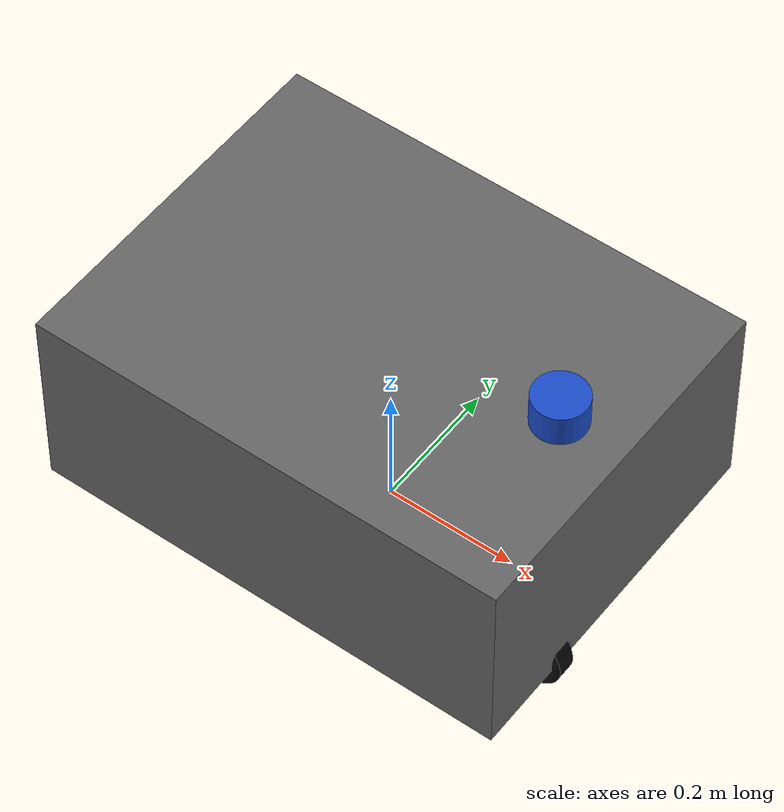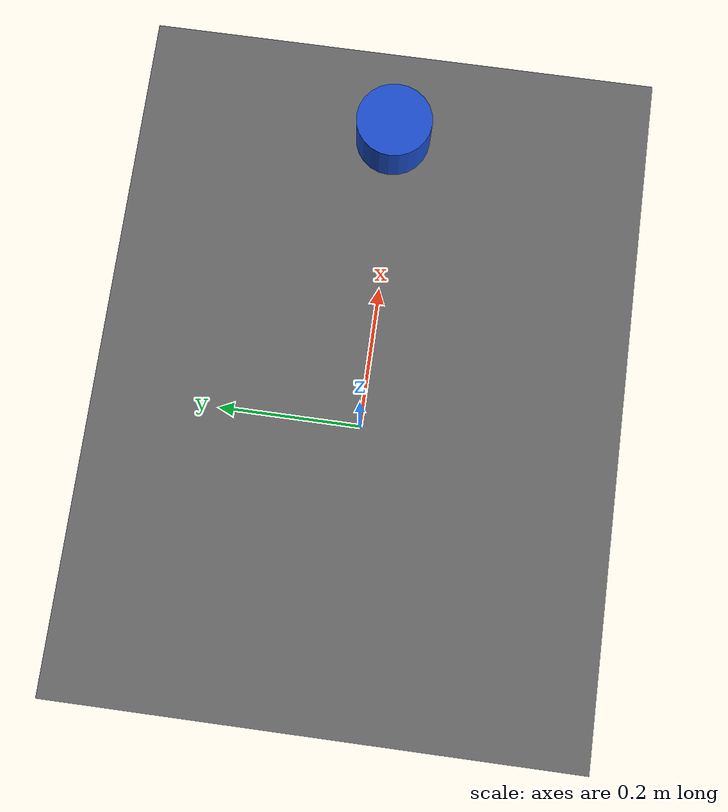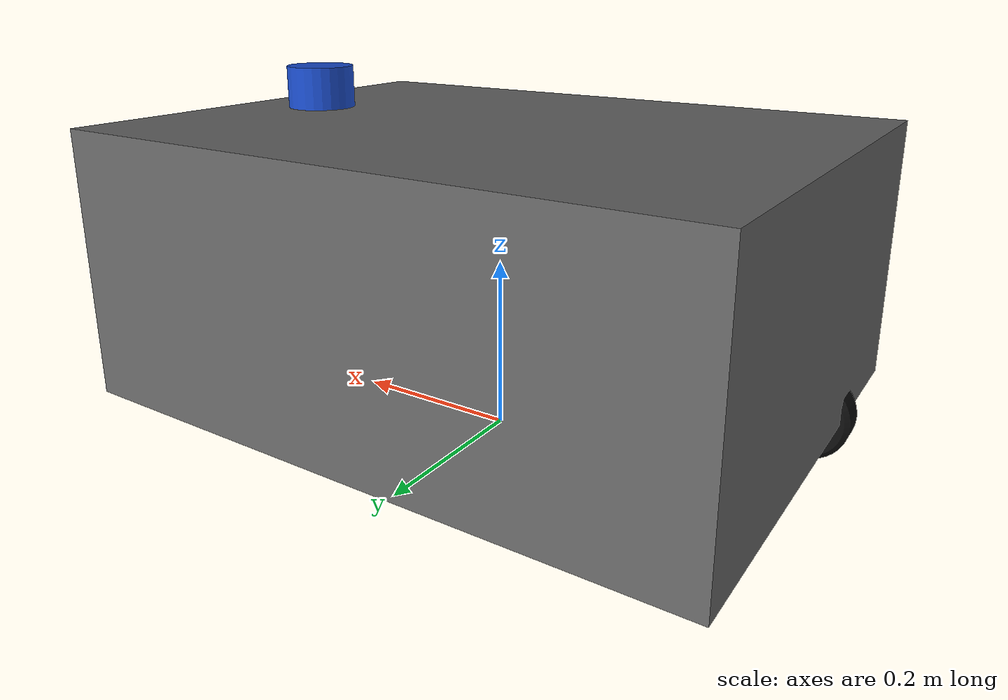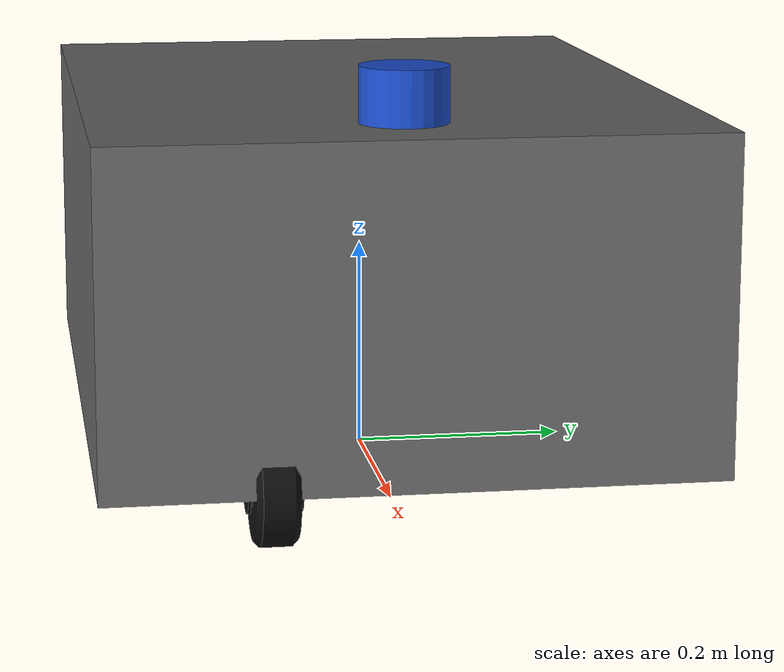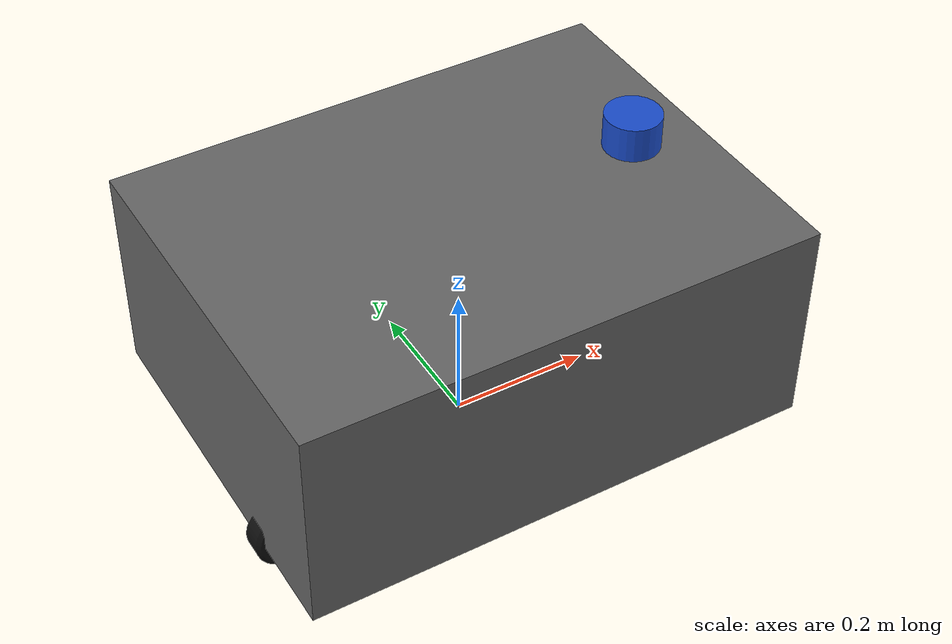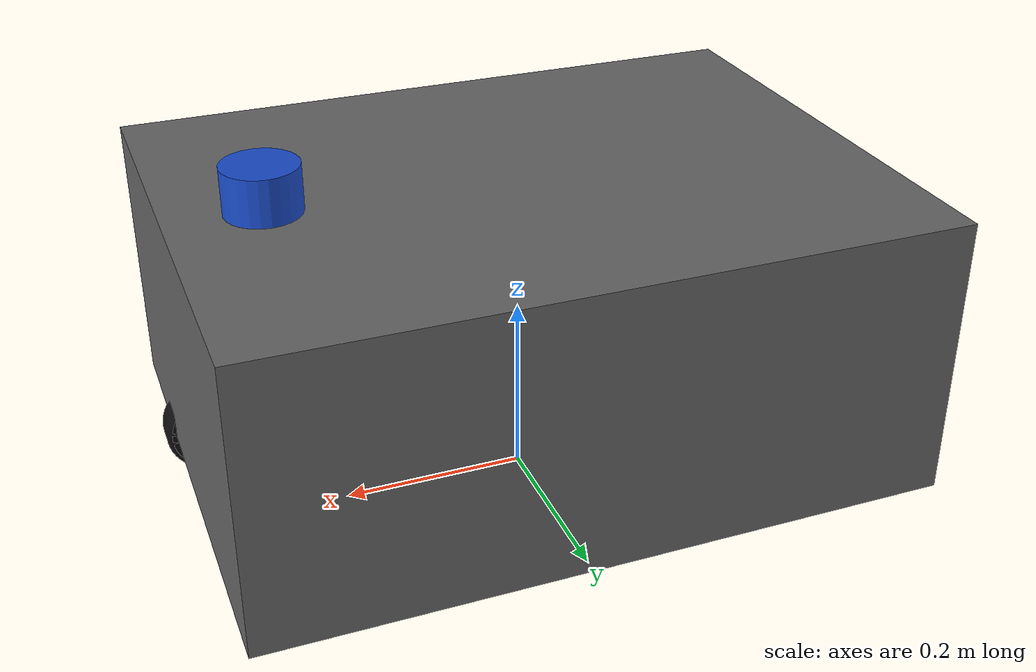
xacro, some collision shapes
<?xml version="1.0"?>
<robot xmlns:xacro="http://www.ros.org/wiki/xacro" name="amr_robot">

  <!-- true = chay Gazebo ; false = hardware that -->
  <xacro:arg name="use_sim" default="true"/>
  <xacro:arg name="use_ros2_control" default="true"/>

  <!-- ===== Include cac phan ===== -->
  <xacro:include filename="$(find robot_description)/urdf/common_properties.xacro"/>
  <xacro:include filename="$(find robot_description)/urdf/materials.xacro"/>
  <xacro:include filename="$(find robot_description)/urdf/wheels.xacro"/>
  <xacro:include filename="$(find robot_description)/urdf/sensors.xacro"/>
  <xacro:include filename="$(find robot_description)/urdf/ros2_control.xacro"/>

  <!-- ===== base_footprint (cho Nav2/odom) ===== -->
  <link name="base_footprint"/>

  <joint name="base_joint" type="fixed">
    <parent link="base_footprint"/>
    <child  link="base_link"/>
    <origin xyz="0 0 ${base_z}" rpy="0 0 0"/>
  </joint>

  <!-- ===== base_link (than xe) ===== -->
  <link name="base_link">
    <!-- Mesh goc tu CAD; scale mm -> m va doi truc CAD -> ROS. -->
    <visual>
      <origin xyz="-1.674842 -0.764810 -1.092814" rpy="${cad_to_ros_rpy}"/>
      <geometry>
        <mesh filename="package://robot_description/meshes/chassis.stl"
              scale="${mesh_scale} ${mesh_scale} ${mesh_scale}"/>
      </geometry>
      <material name="grey"/>
    </visual>

    <!-- Collision = box don gian (khong dung mesh) de Gazebo/ODE dung va cham
         NHANH. Mesh chi tiet lam physics cham vai phut trong VM. -->
    <collision>
      <origin xyz="0 0 0" rpy="0 0 0"/>
      <geometry>
        <box size="${base_length} ${base_width} ${base_height}"/>
      </geometry>
    </collision>

    <xacro:box_inertia m="${base_mass}" x="${base_length}" y="${base_width}" z="${base_height}"/>
  </link>

  <gazebo reference="base_link">
    <material>Gazebo/Grey</material>
  </gazebo>

  <!-- ===== Banh chinh ===== -->
  <xacro:drive_wheel prefix="left"  reflect="1"
                     mesh_file="left_drive_wheel.stl"
                     mesh_x="-1.674844" mesh_y="-0.981060" mesh_z="-0.985314"/>
  <xacro:drive_wheel prefix="right" reflect="-1"
                     mesh_file="right_drive_wheel.stl"
                     mesh_x="-1.674844" mesh_y="-0.548560" mesh_z="-0.985314"/>

  <!-- ===== 4 banh phu o 4 goc ===== -->
  <xacro:caster_wheel prefix="front_left" xpos="${caster_front_x}" ypos="${caster_left_y}"
                       mesh_file="front_left_caster.stl"
                       mesh_x="-1.964838" mesh_y="-0.917062" mesh_z="-0.974809"/>
  <xacro:caster_wheel prefix="front_right" xpos="${caster_front_x}" ypos="${caster_right_y}"
                       mesh_file="front_right_caster.stl"
                       mesh_x="-1.964857" mesh_y="-0.642145" mesh_z="-0.974809"/>
  <xacro:caster_wheel prefix="rear_left" xpos="${caster_rear_x}" ypos="${caster_left_y}"
                       mesh_file="rear_left_caster.stl"
                       mesh_x="-1.384831" mesh_y="-0.917062" mesh_z="-0.974809"/>
  <xacro:caster_wheel prefix="rear_right" xpos="${caster_rear_x}" ypos="${caster_right_y}"
                       mesh_file="rear_right_caster.stl"
                       mesh_x="-1.384831" mesh_y="-0.642062" mesh_z="-0.974809"/>

  <!-- ===== ros2_control ===== -->
  <xacro:if value="$(arg use_ros2_control)">
    <xacro:robot_ros2_control use_sim="$(arg use_sim)"/>
  </xacro:if>

</robot>

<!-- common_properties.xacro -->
<robot xmlns:xacro="http://www.ros.org/wiki/xacro">

  <!-- ===== THAN XE (base / chassis) ===== -->
  <!-- Do tu chassis.stl: Dai 0.730 x Rong 0.550 x Cao 0.305 (m). -->
  <xacro:property name="base_length" value="0.73"/>   <!-- truc X (toi/lui) -->
  <xacro:property name="base_width"  value="0.55"/>   <!-- truc Y (trai/phai) -->
  <xacro:property name="base_height" value="0.305"/>  <!-- truc Z (cao) -->
  <xacro:property name="base_mass"   value="40.0"/>   <!-- UOC LUONG: doi theo can that -->

  <!-- ===== CAD mesh transform ===== -->
  <!-- STL dung mm va truc CAD: X=trai/phai, Y=cao, Z=truoc/sau.
       ROS: X=truoc, Y=trai, Z=cao. -->
  <xacro:property name="mesh_scale" value="0.001"/>
  <xacro:property name="cad_to_ros_rpy" value="1.57079632679 0 1.57079632679"/>

  <!-- ===== BANH CHINH (driven wheels) ===== -->
  <!-- Do tu drive-wheel STL: duong kinh xap xi 0.1945m, day 0.050m. -->
  <xacro:property name="wheel_radius" value="0.09725"/>
  <xacro:property name="wheel_width"  value="0.05"/>
  <xacro:property name="wheel_mass"   value="2.0"/>

  <!-- Khoang cach tam-tam do truc CAD: 981.06 - 548.56 = 432.50mm. -->
  <xacro:property name="wheel_separation" value="0.4325"/>

  <!-- Vi tri tam banh so voi tam base_link, lay tu CAD. -->
  <xacro:property name="wheel_xoff" value="0.0"/>
  <xacro:property name="wheel_zoff" value="-0.10753"/>

  <!-- ===== BANH PHU ===== -->
  <!-- Kich thuoc STL phu khoang 0.169 x 0.171m. -->
  <xacro:property name="caster_radius" value="0.0855"/>
  <xacro:property name="caster_mass"   value="0.5"/>
  <!-- Vi tri 4 banh phu do tu tam mesh, giu dung CAD. -->
  <xacro:property name="caster_front_x" value="0.2900"/>
  <xacro:property name="caster_rear_x"  value="-0.2900"/>
  <xacro:property name="caster_left_y"  value="0.15225"/>
  <xacro:property name="caster_right_y" value="-0.12275"/>
  <!-- Ha xuong de banh phu CHAM DAT (day = day banh chinh) -> robot dung vung,
       khong lat. caster_zoff = caster_radius - base_z = 0.0855 - 0.20478. -->
  <xacro:property name="caster_zoff" value="-0.11928"/>

  <!-- ===== CHIEU CAO LAP DAT ===== -->
  <!-- Base_link la tam khung. Dat theo day banh chinh trong CAD. -->
  <xacro:property name="base_z" value="0.20478"/>

  <!-- ===== INERTIA MACROS ===== -->
  <!-- Khoi hop dac -->
  <xacro:macro name="box_inertia" params="m x y z">
    <inertial>
      <mass value="${m}"/>
      <inertia
        ixx="${(m/12.0)*(y*y + z*z)}" ixy="0.0" ixz="0.0"
        iyy="${(m/12.0)*(x*x + z*z)}" iyz="0.0"
        izz="${(m/12.0)*(x*x + y*y)}"/>
    </inertial>
  </xacro:macro>

  <!-- Khoi tru dac -->
  <xacro:macro name="cylinder_inertia" params="m r h">
    <inertial>
      <mass value="${m}"/>
      <inertia
        ixx="${(m/12.0)*(3*r*r + h*h)}" ixy="0.0" ixz="0.0"
        iyy="${(m/12.0)*(3*r*r + h*h)}" iyz="0.0"
        izz="${(m/2.0)*(r*r)}"/>
    </inertial>
  </xacro:macro>

  <!-- Khoi cau dac -->
  <xacro:macro name="sphere_inertia" params="m r">
    <inertial>
      <mass value="${m}"/>
      <inertia
        ixx="${(2.0/5.0)*m*r*r}" ixy="0.0" ixz="0.0"
        iyy="${(2.0/5.0)*m*r*r}" iyz="0.0"
        izz="${(2.0/5.0)*m*r*r}"/>
    </inertial>
  </xacro:macro>

</robot>

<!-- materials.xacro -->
<robot xmlns:xacro="http://www.ros.org/wiki/xacro">
  <material name="grey">   <color rgba="0.4 0.4 0.4 1.0"/></material>
  <material name="dark_grey"><color rgba="0.2 0.2 0.2 1.0"/></material>
  <material name="orange"> <color rgba="0.9 0.5 0.1 1.0"/></material>
  <material name="black">  <color rgba="0.05 0.05 0.05 1.0"/></material>
  <material name="blue">   <color rgba="0.1 0.3 0.8 1.0"/></material>
  <material name="white">  <color rgba="0.9 0.9 0.9 1.0"/></material>
</robot>

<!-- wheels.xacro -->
<robot xmlns:xacro="http://www.ros.org/wiki/xacro">

  <!-- ===== BÁNH CHÍNH (có motor) ===== -->
  <!-- prefix: left/right ; reflect: +1 (trái) / -1 (phải) -->
  <xacro:macro name="drive_wheel" params="prefix reflect mesh_file mesh_x mesh_y mesh_z">
    <link name="${prefix}_wheel_link">
      <visual>
        <origin xyz="${mesh_x} ${mesh_y} ${mesh_z}" rpy="${cad_to_ros_rpy}"/>
        <geometry>
          <mesh filename="package://robot_description/meshes/${mesh_file}"
                scale="${mesh_scale} ${mesh_scale} ${mesh_scale}"/>
        </geometry>
        <material name="black"/>
      </visual>
      <collision>
        <origin xyz="${mesh_x} ${mesh_y} ${mesh_z}" rpy="${cad_to_ros_rpy}"/>
        <geometry>
          <mesh filename="package://robot_description/meshes/${mesh_file}"
                scale="${mesh_scale} ${mesh_scale} ${mesh_scale}"/>
        </geometry>
      </collision>
      <!-- inertia của cylinder; vì link sẽ quay quanh Y nên dùng macro chuẩn -->
      <xacro:cylinder_inertia m="${wheel_mass}" r="${wheel_radius}" h="${wheel_width}"/>
    </link>

    <!-- joint quay liên tục quanh trục Y của bánh -->
    <joint name="${prefix}_wheel_joint" type="continuous">
      <parent link="base_link"/>
      <child  link="${prefix}_wheel_link"/>
      <!-- Vi tri tam banh lay tu CAD -->
      <origin xyz="${wheel_xoff} ${reflect * wheel_separation/2} ${wheel_zoff}"
              rpy="0 0 0"/>
      <axis xyz="0 1 0"/>
      <limit effort="100.0" velocity="20.0"/>
      <dynamics damping="0.05" friction="0.1"/>
    </joint>

    <!-- thuộc tính Gazebo cho bánh: ma sát cao để không trượt -->
    <gazebo reference="${prefix}_wheel_link">
      <mu1>1.0</mu1>
      <mu2>1.0</mu2>
      <kp>1000000.0</kp>
      <kd>100.0</kd>
      <material>Gazebo/Black</material>
    </gazebo>
  </xacro:macro>

  <!-- ===== BANH PHU ===== -->
  <!-- Hinh dang lay tu STL; co cau swivel chua duoc mo phong. -->
  <xacro:macro name="caster_wheel" params="prefix xpos ypos mesh_file mesh_x mesh_y mesh_z">
    <link name="${prefix}_caster_link">
      <visual>
        <origin xyz="${mesh_x} ${mesh_y} ${mesh_z}" rpy="${cad_to_ros_rpy}"/>
        <geometry>
          <mesh filename="package://robot_description/meshes/${mesh_file}"
                scale="${mesh_scale} ${mesh_scale} ${mesh_scale}"/>
        </geometry>
        <material name="black"/>
      </visual>
      <collision>
        <origin xyz="${mesh_x} ${mesh_y} ${mesh_z}" rpy="${cad_to_ros_rpy}"/>
        <geometry>
          <mesh filename="package://robot_description/meshes/${mesh_file}"
                scale="${mesh_scale} ${mesh_scale} ${mesh_scale}"/>
        </geometry>
      </collision>
      <xacro:sphere_inertia m="${caster_mass}" r="${caster_radius}"/>
    </link>

    <!-- fixed joint: chi mo phong hinh dang va tiep xuc, chua co swivel joint -->
    <joint name="${prefix}_caster_joint" type="fixed">
      <parent link="base_link"/>
      <child  link="${prefix}_caster_link"/>
      <origin xyz="${xpos} ${ypos} ${caster_zoff}" rpy="0 0 0"/>
    </joint>

    <!-- Ma sat thap de banh phu khong keo le robot qua nhieu. -->
    <gazebo reference="${prefix}_caster_link">
      <mu1>0.0</mu1>
      <mu2>0.0</mu2>
      <kp>1000000.0</kp>
      <kd>100.0</kd>
      <material>Gazebo/Grey</material>
    </gazebo>
  </xacro:macro>

</robot>

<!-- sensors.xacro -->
<robot xmlns:xacro="http://www.ros.org/wiki/xacro">

  <!-- ============================ LiDAR 2D ============================ -->
  <!-- Gắn trên nóc, phía trước, giữa theo Y -->
  <xacro:property name="lidar_radius" value="0.04"/>
  <xacro:property name="lidar_height" value="0.05"/>
  <xacro:property name="lidar_x" value="${base_length/2 - 0.10}"/>
  <xacro:property name="lidar_z" value="${base_height/2 + lidar_height/2}"/>

  <link name="lidar_link">
    <visual>
      <geometry><cylinder radius="${lidar_radius}" length="${lidar_height}"/></geometry>
      <material name="blue"/>
    </visual>
    <collision>
      <geometry><cylinder radius="${lidar_radius}" length="${lidar_height}"/></geometry>
    </collision>
    <xacro:cylinder_inertia m="0.2" r="${lidar_radius}" h="${lidar_height}"/>
  </link>

  <joint name="lidar_joint" type="fixed">
    <parent link="base_link"/>
    <child  link="lidar_link"/>
    <origin xyz="${lidar_x} 0 ${lidar_z}" rpy="0 0 0"/>
  </joint>

  <gazebo reference="lidar_link">
    <material>Gazebo/Blue</material>
    <sensor name="lidar" type="ray">
      <pose>0 0 0 0 0 0</pose>
      <!-- false: khong ve tia laser trong gzclient (nhe hon nhieu cho VM);
           van co topic /scan, xem tia trong RViz. -->
      <visualize>false</visualize>
      <update_rate>10</update_rate>
      <ray>
        <scan>
          <horizontal>
            <samples>360</samples>
            <resolution>1.0</resolution>
            <min_angle>-3.141592</min_angle>
            <max_angle>3.141592</max_angle>
          </horizontal>
        </scan>
        <range>
          <min>0.12</min>
          <max>12.0</max>
          <resolution>0.01</resolution>
        </range>
        <noise>
          <type>gaussian</type>
          <mean>0.0</mean>
          <stddev>0.01</stddev>
        </noise>
      </ray>
      <plugin name="lidar_controller" filename="libgazebo_ros_ray_sensor.so">
        <ros>
          <remapping>~/out:=scan</remapping>
        </ros>
        <output_type>sensor_msgs/LaserScan</output_type>
        <frame_name>lidar_link</frame_name>
      </plugin>
    </sensor>
  </gazebo>

  <!-- ============================== IMU =============================== -->
  <link name="imu_link">
    <visual>
      <geometry><box size="0.03 0.03 0.01"/></geometry>
      <material name="orange"/>
    </visual>
    <xacro:box_inertia m="0.05" x="0.03" y="0.03" z="0.01"/>
  </link>

  <joint name="imu_joint" type="fixed">
    <parent link="base_link"/>
    <child  link="imu_link"/>
    <origin xyz="0 0 0" rpy="0 0 0"/>
  </joint>

  <gazebo reference="imu_link">
    <sensor name="imu_sensor" type="imu">
      <always_on>true</always_on>
      <update_rate>100</update_rate>
      <plugin name="imu_plugin" filename="libgazebo_ros_imu_sensor.so">
        <ros>
          <remapping>~/out:=imu/data</remapping>
        </ros>
        <initial_orientation_as_reference>false</initial_orientation_as_reference>
      </plugin>
    </sensor>
  </gazebo>

</robot>
